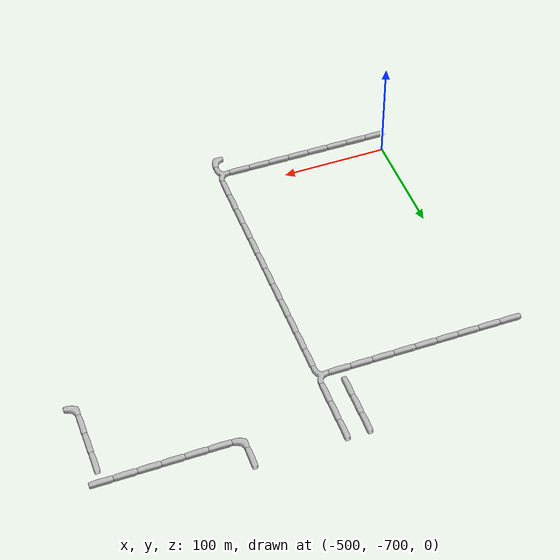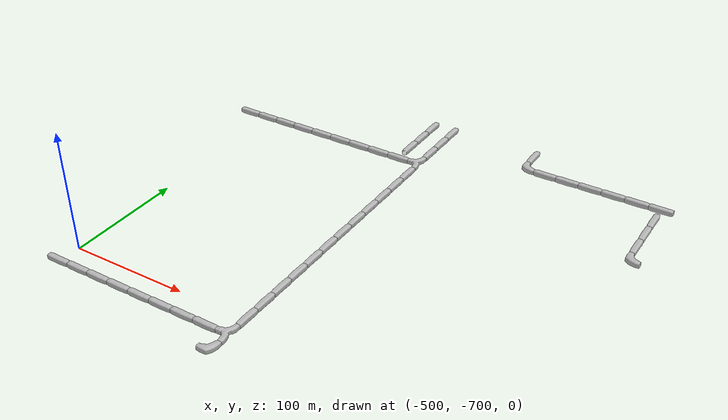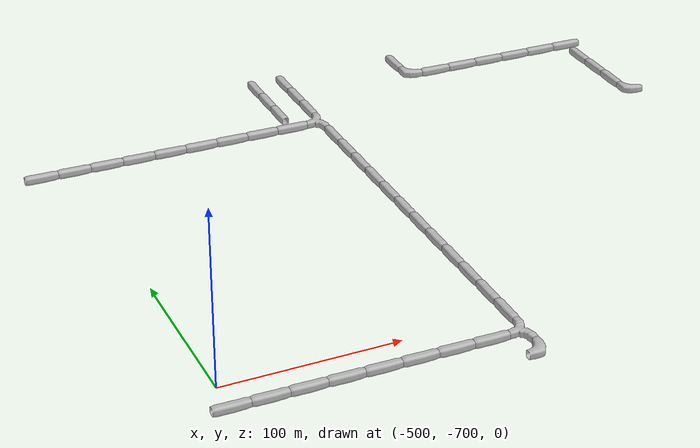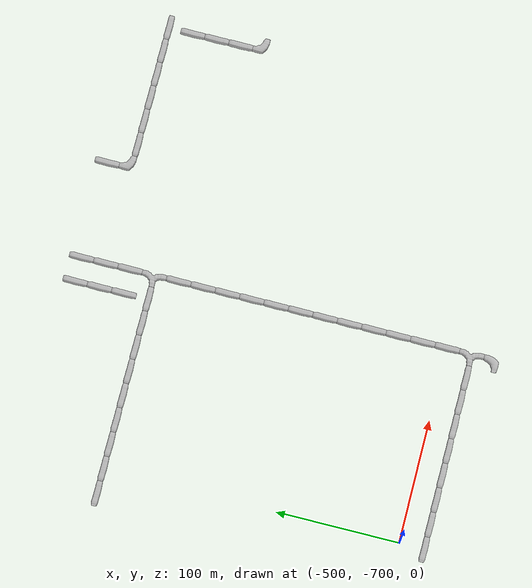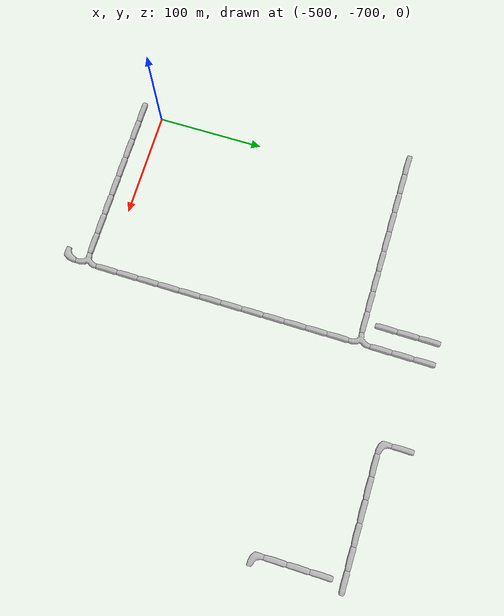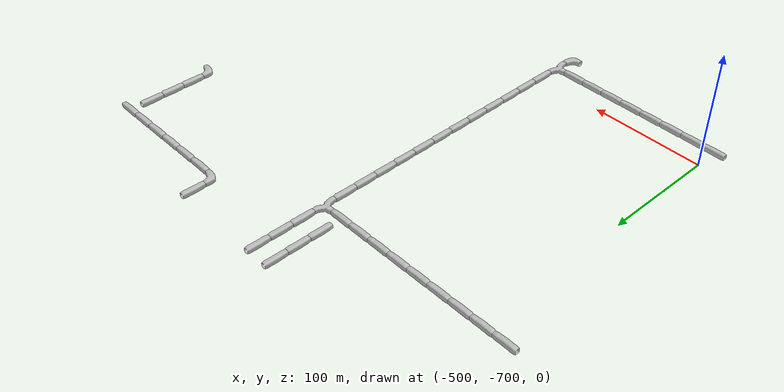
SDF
<sdf version="1.6">
 <world name="cave_16000_64">
  <include>
   <static>true</static>
   <name>cave_-13_-20</name>
   <pose>-260 -400 0 0 0 0.0</pose>
   <uri>model://cave_straight_20m</uri>
  </include>
  <include>
   <static>true</static>
   <name>cave_-13_-21</name>
   <pose>-260 -420 0 0 0 0.0</pose>
   <uri>model://cave_L_20m</uri>
  </include>
  <include>
   <static>true</static>
   <name>cave_-12_-21</name>
   <pose>-240 -420 0 0 0 1.5707963267948966</pose>
   <uri>model://cave_straight_20m</uri>
  </include>
  <include>
   <static>true</static>
   <name>cave_-11_-21</name>
   <pose>-220 -420 0 0 0 1.5707963267948966</pose>
   <uri>model://cave_straight_20m</uri>
  </include>
  <include>
   <static>true</static>
   <name>cave_-10_-21</name>
   <pose>-200 -420 0 0 0 1.5707963267948966</pose>
   <uri>model://cave_straight_20m</uri>
  </include>
  <include>
   <static>true</static>
   <name>cave_-9_-21</name>
   <pose>-180 -420 0 0 0 1.5707963267948966</pose>
   <uri>model://cave_straight_20m</uri>
  </include>
  <include>
   <static>true</static>
   <name>cave_-8_-21</name>
   <pose>-160 -420 0 0 0 1.5707963267948966</pose>
   <uri>model://cave_straight_20m</uri>
  </include>
  <include>
   <static>true</static>
   <name>cave_-7_-21</name>
   <pose>-140 -420 0 0 0 1.5707963267948966</pose>
   <uri>model://cave_straight_20m</uri>
  </include>
  <include>
   <static>true</static>
   <name>cave_-7_-25</name>
   <pose>-140 -500 0 0 0 0.0</pose>
   <uri>model://cave_L_20m</uri>
  </include>
  <include>
   <static>true</static>
   <name>cave_-7_-24</name>
   <pose>-140 -480 0 0 0 0.0</pose>
   <uri>model://cave_straight_20m</uri>
  </include>
  <include>
   <static>true</static>
   <name>cave_-7_-23</name>
   <pose>-140 -460 0 0 0 0.0</pose>
   <uri>model://cave_straight_20m</uri>
  </include>
  <include>
   <static>true</static>
   <name>cave_-7_-22</name>
   <pose>-140 -440 0 0 0 0.0</pose>
   <uri>model://cave_straight_20m</uri>
  </include>
  <include>
   <static>true</static>
   <name>cave_-17_-20</name>
   <pose>-340 -400 0 0 0 0.0</pose>
   <uri>model://cave_straight_20m</uri>
  </include>
  <include>
   <static>true</static>
   <name>cave_-17_-21</name>
   <pose>-340 -420 0 0 0 0.0</pose>
   <uri>model://cave_straight_20m</uri>
  </include>
  <include>
   <static>true</static>
   <name>cave_-17_-22</name>
   <pose>-340 -440 0 0 0 0.0</pose>
   <uri>model://cave_straight_20m</uri>
  </include>
  <include>
   <static>true</static>
   <name>cave_-17_-23</name>
   <pose>-340 -460 0 0 0 1.5707963267948966</pose>
   <uri>model://cave_3way_20m</uri>
  </include>
  <include>
   <static>true</static>
   <name>cave_-17_-24</name>
   <pose>-340 -480 0 0 0 0.0</pose>
   <uri>model://cave_straight_20m</uri>
  </include>
  <include>
   <static>true</static>
   <name>cave_-17_-25</name>
   <pose>-340 -500 0 0 0 0.0</pose>
   <uri>model://cave_straight_20m</uri>
  </include>
  <include>
   <static>true</static>
   <name>cave_-17_-26</name>
   <pose>-340 -520 0 0 0 0.0</pose>
   <uri>model://cave_straight_20m</uri>
  </include>
  <include>
   <static>true</static>
   <name>cave_-17_-27</name>
   <pose>-340 -540 0 0 0 0.0</pose>
   <uri>model://cave_straight_20m</uri>
  </include>
  <include>
   <static>true</static>
   <name>cave_-17_-28</name>
   <pose>-340 -560 0 0 0 0.0</pose>
   <uri>model://cave_straight_20m</uri>
  </include>
  <include>
   <static>true</static>
   <name>cave_-17_-29</name>
   <pose>-340 -580 0 0 0 0.0</pose>
   <uri>model://cave_straight_20m</uri>
  </include>
  <include>
   <static>true</static>
   <name>cave_-17_-30</name>
   <pose>-340 -600 0 0 0 0.0</pose>
   <uri>model://cave_straight_20m</uri>
  </include>
  <include>
   <static>true</static>
   <name>cave_-17_-31</name>
   <pose>-340 -620 0 0 0 0.0</pose>
   <uri>model://cave_straight_20m</uri>
  </include>
  <include>
   <static>true</static>
   <name>cave_-17_-32</name>
   <pose>-340 -640 0 0 0 0.0</pose>
   <uri>model://cave_straight_20m</uri>
  </include>
  <include>
   <static>true</static>
   <name>cave_-17_-33</name>
   <pose>-340 -660 0 0 0 0.0</pose>
   <uri>model://cave_straight_20m</uri>
  </include>
  <include>
   <static>true</static>
   <name>cave_-17_-34</name>
   <pose>-340 -680 0 0 0 0.0</pose>
   <uri>model://cave_straight_20m</uri>
  </include>
  <include>
   <static>true</static>
   <name>cave_-17_-35</name>
   <pose>-340 -700 0 0 0 0.0</pose>
   <uri>model://cave_straight_20m</uri>
  </include>
  <include>
   <static>true</static>
   <name>cave_-17_-36</name>
   <pose>-340 -720 0 0 0 1.5707963267948966</pose>
   <uri>model://cave_3way_20m</uri>
  </include>
  <include>
   <static>true</static>
   <name>cave_-17_-37</name>
   <pose>-340 -740 0 0 0 1.5707963267948966</pose>
   <uri>model://cave_L_20m</uri>
  </include>
  <include>
   <static>true</static>
   <name>cave_-18_-36</name>
   <pose>-360 -720 0 0 0 1.5707963267948966</pose>
   <uri>model://cave_straight_20m</uri>
  </include>
  <include>
   <static>true</static>
   <name>cave_-19_-36</name>
   <pose>-380 -720 0 0 0 1.5707963267948966</pose>
   <uri>model://cave_straight_20m</uri>
  </include>
  <include>
   <static>true</static>
   <name>cave_-20_-36</name>
   <pose>-400 -720 0 0 0 1.5707963267948966</pose>
   <uri>model://cave_straight_20m</uri>
  </include>
  <include>
   <static>true</static>
   <name>cave_-21_-36</name>
   <pose>-420 -720 0 0 0 1.5707963267948966</pose>
   <uri>model://cave_straight_20m</uri>
  </include>
  <include>
   <static>true</static>
   <name>cave_-22_-36</name>
   <pose>-440 -720 0 0 0 1.5707963267948966</pose>
   <uri>model://cave_straight_20m</uri>
  </include>
  <include>
   <static>true</static>
   <name>cave_-23_-36</name>
   <pose>-460 -720 0 0 0 1.5707963267948966</pose>
   <uri>model://cave_straight_20m</uri>
  </include>
  <include>
   <static>true</static>
   <name>cave_-24_-36</name>
   <pose>-480 -720 0 0 0 1.5707963267948966</pose>
   <uri>model://cave_straight_20m</uri>
  </include>
  <include>
   <static>true</static>
   <name>cave_-25_-36</name>
   <pose>-500 -720 0 0 0 1.5707963267948966</pose>
   <uri>model://cave_straight_20m</uri>
  </include>
  <include>
   <static>true</static>
   <name>cave_-18_-23</name>
   <pose>-360 -460 0 0 0 1.5707963267948966</pose>
   <uri>model://cave_straight_20m</uri>
  </include>
  <include>
   <static>true</static>
   <name>cave_-19_-23</name>
   <pose>-380 -460 0 0 0 1.5707963267948966</pose>
   <uri>model://cave_straight_20m</uri>
  </include>
  <include>
   <static>true</static>
   <name>cave_-20_-23</name>
   <pose>-400 -460 0 0 0 1.5707963267948966</pose>
   <uri>model://cave_straight_20m</uri>
  </include>
  <include>
   <static>true</static>
   <name>cave_-21_-23</name>
   <pose>-420 -460 0 0 0 1.5707963267948966</pose>
   <uri>model://cave_straight_20m</uri>
  </include>
  <include>
   <static>true</static>
   <name>cave_-22_-23</name>
   <pose>-440 -460 0 0 0 1.5707963267948966</pose>
   <uri>model://cave_straight_20m</uri>
  </include>
  <include>
   <static>true</static>
   <name>cave_-23_-23</name>
   <pose>-460 -460 0 0 0 1.5707963267948966</pose>
   <uri>model://cave_straight_20m</uri>
  </include>
  <include>
   <static>true</static>
   <name>cave_-24_-23</name>
   <pose>-480 -460 0 0 0 1.5707963267948966</pose>
   <uri>model://cave_straight_20m</uri>
  </include>
  <include>
   <static>true</static>
   <name>cave_-25_-23</name>
   <pose>-500 -460 0 0 0 1.5707963267948966</pose>
   <uri>model://cave_straight_20m</uri>
  </include>
  <include>
   <static>true</static>
   <name>cave_-26_-23</name>
   <pose>-520 -460 0 0 0 1.5707963267948966</pose>
   <uri>model://cave_straight_20m</uri>
  </include>
  <include>
   <static>true</static>
   <name>cave_-18_-20</name>
   <pose>-360 -400 0 0 0 0.0</pose>
   <uri>model://cave_straight_20m</uri>
  </include>
  <include>
   <static>true</static>
   <name>cave_-18_-21</name>
   <pose>-360 -420 0 0 0 0.0</pose>
   <uri>model://cave_straight_20m</uri>
  </include>
  <include>
   <static>true</static>
   <name>cave_-18_-22</name>
   <pose>-360 -440 0 0 0 0.0</pose>
   <uri>model://cave_straight_20m</uri>
  </include>
 </world>
</sdf>
